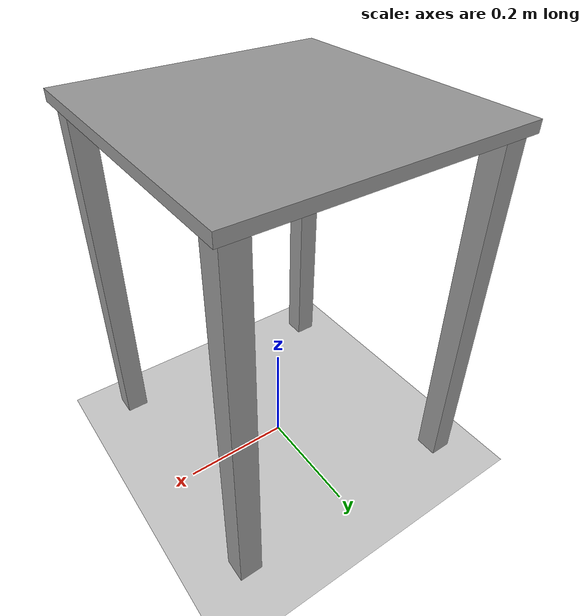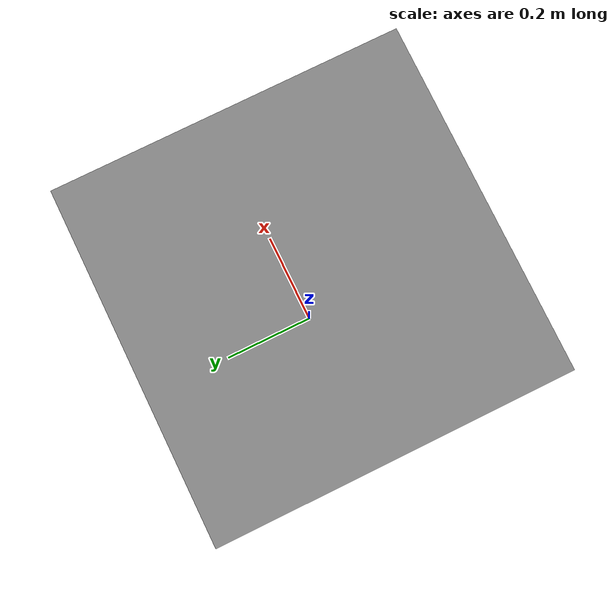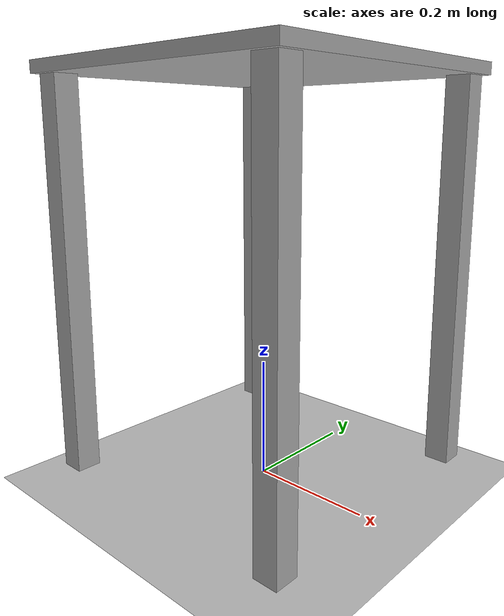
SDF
<sdf version="1.6">
 <world name="ur3_cubes">
  <gravity>0 0 -9.81</gravity>
  <physics name="default_physics" default="0" type="ode">
   <max_step_size>0.001</max_step_size>
   <real_time_factor>1</real_time_factor>
   <real_time_update_rate>1000</real_time_update_rate>
  </physics>
  <plugin name="ros_link_attacher_plugin" filename="libgazebo_ros_link_attacher.so"/>
  <scene><ambient>0.4 0.4 0.4 1</ambient><background>0.40 0.43 0.67 1</background><shadows>1</shadows></scene>
  <include><uri>model://sun</uri></include>
  <include><uri>model://ground_plane</uri></include>
  <model name="ur_base"><include><uri>model://ur_base</uri></include></model>
 </world>
</sdf>

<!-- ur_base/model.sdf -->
<sdf version="1.6">
  <model name="ur_base">
    <static>true</static>

    <link name="top_plate">
      <pose>0 0 0.67501 0 0 0</pose>
      <collision name="top_plate_collision">
        <geometry>
          <box>
            <size>0.5 0.5 0.02</size>
          </box>
        </geometry>
        <surface>
          <contact>
            <collide_bitmask>0x01</collide_bitmask>
          </contact>
        </surface>
      </collision>
      <visual name="top_plate_visual">
        <geometry>
          <box>
            <size>0.5 0.5 0.02</size>
          </box>
        </geometry>
        <material>
          <script>
            <uri>file://media/materials/scripts/gazebo.material</uri>
            <name>Gazebo/Grey</name>
          </script>
        </material>
      </visual>
    </link>
    <link name="leg1">
      <pose>0.22 0.22 0.35 0 0 0</pose>
      <visual name="leg1_visual">
        <geometry>
          <box>
            <size>0.04 0.04 0.655</size>
          </box>
        </geometry>
        <material>
          <script>
            <uri>file://media/materials/scripts/gazebo.material</uri>
            <name>Gazebo/Grey</name>
          </script>
        </material>
      </visual>
    </link>
    <link name="leg2">
      <pose>-0.22 0.22 0.35 0 0 0</pose>
      <visual name="leg2_visual">
        <geometry>
          <box>
            <size>0.04 0.04 0.655</size>
          </box>
        </geometry>
        <material>
          <script>
            <uri>file://media/materials/scripts/gazebo.material</uri>
            <name>Gazebo/Grey</name>
          </script>
        </material>
      </visual>
    </link>
    <link name="leg3">
      <pose>0.22 -0.22 0.35 0 0 0</pose>
      <visual name="leg3_visual">
        <geometry>
          <box>
            <size>0.04 0.04 0.655</size>
          </box>
        </geometry>
        <material>
          <script>
            <uri>file://media/materials/scripts/gazebo.material</uri>
            <name>Gazebo/Grey</name>
          </script>
        </material>
      </visual>
    </link>
    <link name="leg4">
      <pose>-0.22 -0.22 0.35 0 0 0</pose>
      <visual name="leg4_visual">
        <geometry>
          <box>
            <size>0.04 0.04 0.655</size>
          </box>
        </geometry>
        <material>
          <script>
            <uri>file://media/materials/scripts/gazebo.material</uri>
            <name>Gazebo/Grey</name>
          </script>
        </material>
      </visual>
    </link>
  </model>
</sdf>
